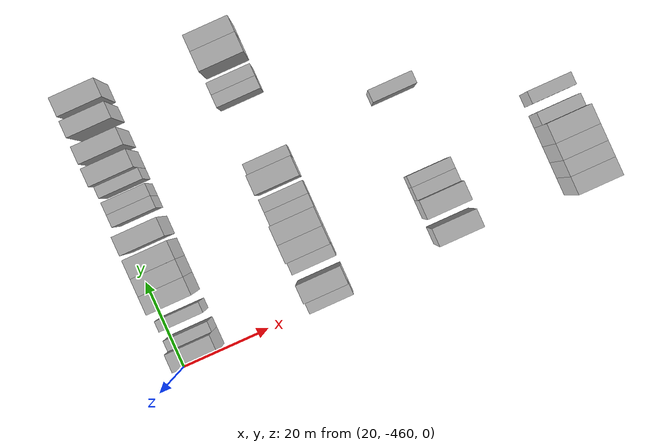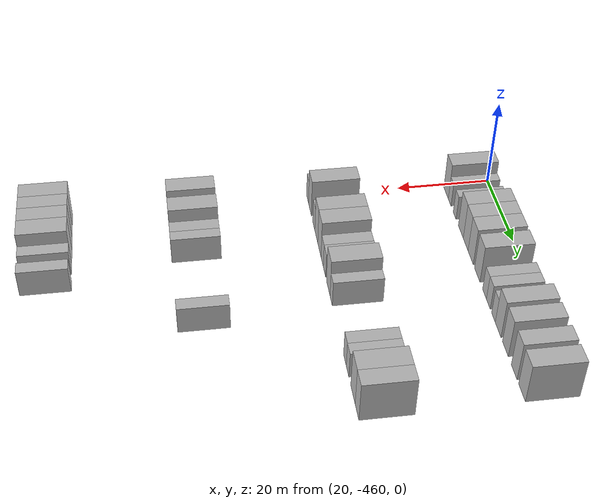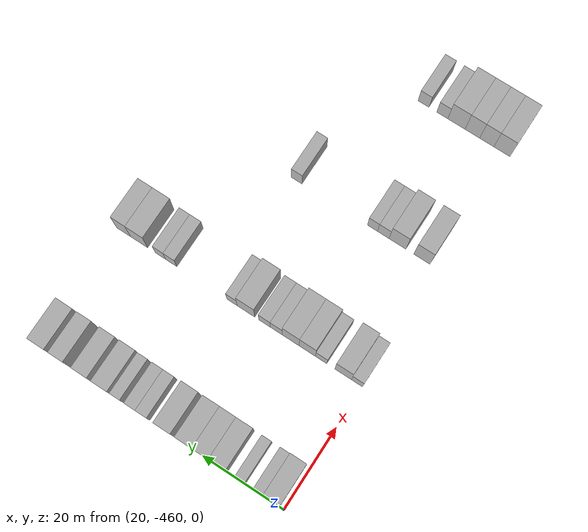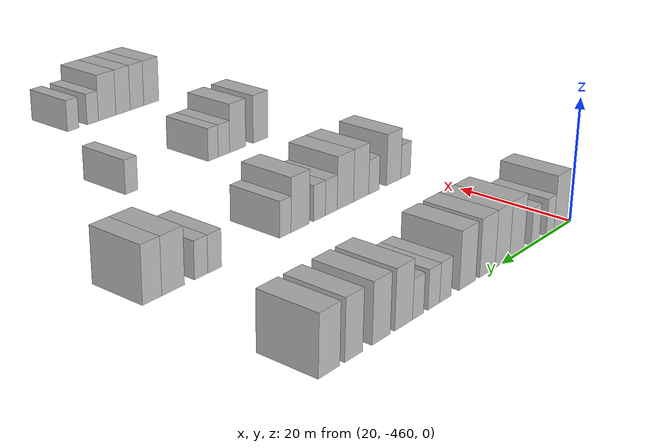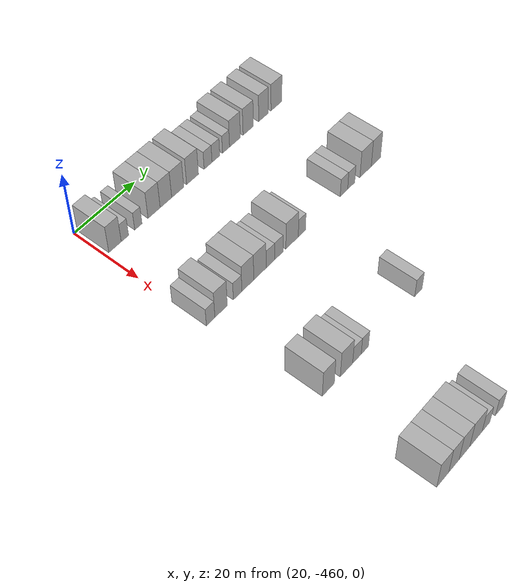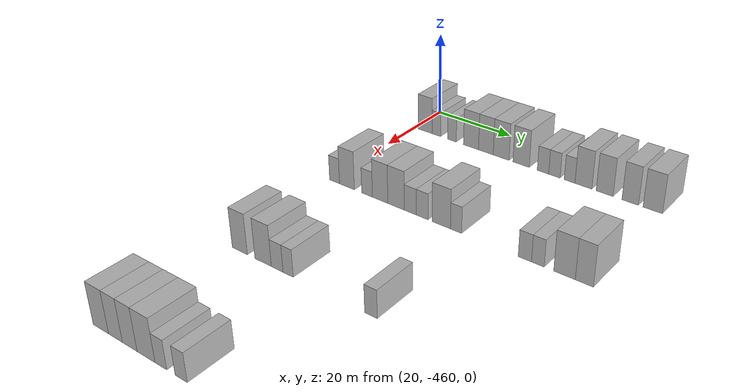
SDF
<sdf version="1.6">
 <world name="default">
  <model name="building_1">
   <static>1</static>
   <pose>25.0000 -456.9990 0 0.000000 0.000000 0.000000</pose>
   <link name="link">
    <pose>0 0 4.50 0 0 0</pose>
    <collision name="collision"><geometry><box><size>10.0000 4.0019 9.0000</size></box></geometry></collision>
    <visual name="visual">
     <cast_shadows>0</cast_shadows>
     <geometry><box><size>10.0000 4.0019 9.0000</size></box></geometry>
     <material>
      <script>
       <uri>model://HANNAS_wall/materials/scripts</uri>
       <uri>model://HANNAS_wall/materials/textures</uri>
       <name>vrc/HANNAS_wall</name>
      </script>
     </material>
    </visual>
   </link>
  </model>
  <model name="building_2">
   <static>1</static>
   <pose>25.0000 -453.7954 0 0.000000 0.000000 0.000000</pose>
   <link name="link">
    <pose>0 0 3.00 0 0 0</pose>
    <collision name="collision"><geometry><box><size>10.0000 2.4054 6.0000</size></box></geometry></collision>
    <visual name="visual">
     <cast_shadows>0</cast_shadows>
     <geometry><box><size>10.0000 2.4054 6.0000</size></box></geometry>
     <material>
      <script>
       <uri>model://HANNAS_wall/materials/scripts</uri>
       <uri>model://HANNAS_wall/materials/textures</uri>
       <name>vrc/HANNAS_wall</name>
      </script>
     </material>
    </visual>
   </link>
  </model>
  <model name="building_3">
   <static>1</static>
   <pose>25.0000 -449.3826 0 0.000000 0.000000 0.000000</pose>
   <link name="link">
    <pose>0 0 3.00 0 0 0</pose>
    <collision name="collision"><geometry><box><size>10.0000 2.4202 6.0000</size></box></geometry></collision>
    <visual name="visual">
     <cast_shadows>0</cast_shadows>
     <geometry><box><size>10.0000 2.4202 6.0000</size></box></geometry>
     <material>
      <script>
       <uri>model://HANNAS_wall/materials/scripts</uri>
       <uri>model://HANNAS_wall/materials/textures</uri>
       <name>vrc/HANNAS_wall</name>
      </script>
     </material>
    </visual>
   </link>
  </model>
  <model name="building_4">
   <static>1</static>
   <pose>25.0000 -444.1288 0 0.000000 0.000000 0.000000</pose>
   <link name="link">
    <pose>0 0 4.50 0 0 0</pose>
    <collision name="collision"><geometry><box><size>10.0000 4.0873 9.0000</size></box></geometry></collision>
    <visual name="visual">
     <cast_shadows>0</cast_shadows>
     <geometry><box><size>10.0000 4.0873 9.0000</size></box></geometry>
     <material>
      <script>
       <uri>model://HANNAS_wall/materials/scripts</uri>
       <uri>model://HANNAS_wall/materials/textures</uri>
       <name>vrc/HANNAS_wall</name>
      </script>
     </material>
    </visual>
   </link>
  </model>
  <model name="building_5">
   <static>1</static>
   <pose>25.0000 -440.1148 0 0.000000 0.000000 0.000000</pose>
   <link name="link">
    <pose>0 0 4.50 0 0 0</pose>
    <collision name="collision"><geometry><box><size>10.0000 3.9407 9.0000</size></box></geometry></collision>
    <visual name="visual">
     <cast_shadows>0</cast_shadows>
     <geometry><box><size>10.0000 3.9407 9.0000</size></box></geometry>
     <material>
      <script>
       <uri>model://HANNAS_wall/materials/scripts</uri>
       <uri>model://HANNAS_wall/materials/textures</uri>
       <name>vrc/HANNAS_wall</name>
      </script>
     </material>
    </visual>
   </link>
  </model>
  <model name="building_6">
   <static>1</static>
   <pose>25.0000 -436.0656 0 0.000000 0.000000 0.000000</pose>
   <link name="link">
    <pose>0 0 4.50 0 0 0</pose>
    <collision name="collision"><geometry><box><size>10.0000 4.1576 9.0000</size></box></geometry></collision>
    <visual name="visual">
     <cast_shadows>0</cast_shadows>
     <geometry><box><size>10.0000 4.1576 9.0000</size></box></geometry>
     <material>
      <script>
       <uri>model://HANNAS_wall/materials/scripts</uri>
       <uri>model://HANNAS_wall/materials/textures</uri>
       <name>vrc/HANNAS_wall</name>
      </script>
     </material>
    </visual>
   </link>
  </model>
  <model name="building_7">
   <static>1</static>
   <pose>25.0000 -430.8940 0 0.000000 0.000000 0.000000</pose>
   <link name="link">
    <pose>0 0 4.50 0 0 0</pose>
    <collision name="collision"><geometry><box><size>10.0000 4.1856 9.0000</size></box></geometry></collision>
    <visual name="visual">
     <cast_shadows>0</cast_shadows>
     <geometry><box><size>10.0000 4.1856 9.0000</size></box></geometry>
     <material>
      <script>
       <uri>model://HANNAS_wall/materials/scripts</uri>
       <uri>model://HANNAS_wall/materials/textures</uri>
       <name>vrc/HANNAS_wall</name>
      </script>
     </material>
    </visual>
   </link>
  </model>
  <model name="building_8">
   <static>1</static>
   <pose>25.0000 -425.3885 0 0.000000 0.000000 0.000000</pose>
   <link name="link">
    <pose>0 0 3.00 0 0 0</pose>
    <collision name="collision"><geometry><box><size>10.0000 2.8254 6.0000</size></box></geometry></collision>
    <visual name="visual">
     <cast_shadows>0</cast_shadows>
     <geometry><box><size>10.0000 2.8254 6.0000</size></box></geometry>
     <material>
      <script>
       <uri>model://HANNAS_wall/materials/scripts</uri>
       <uri>model://HANNAS_wall/materials/textures</uri>
       <name>vrc/HANNAS_wall</name>
      </script>
     </material>
    </visual>
   </link>
  </model>
  <model name="building_9">
   <static>1</static>
   <pose>25.0000 -422.5784 0 0.000000 0.000000 0.000000</pose>
   <link name="link">
    <pose>0 0 3.00 0 0 0</pose>
    <collision name="collision"><geometry><box><size>10.0000 2.7948 6.0000</size></box></geometry></collision>
    <visual name="visual">
     <cast_shadows>0</cast_shadows>
     <geometry><box><size>10.0000 2.7948 6.0000</size></box></geometry>
     <material>
      <script>
       <uri>model://HANNAS_wall/materials/scripts</uri>
       <uri>model://HANNAS_wall/materials/textures</uri>
       <name>vrc/HANNAS_wall</name>
      </script>
     </material>
    </visual>
   </link>
  </model>
  <model name="building_10">
   <static>1</static>
   <pose>25.0000 -418.8921 0 0.000000 0.000000 0.000000</pose>
   <link name="link">
    <pose>0 0 3.00 0 0 0</pose>
    <collision name="collision"><geometry><box><size>10.0000 2.5778 6.0000</size></box></geometry></collision>
    <visual name="visual">
     <cast_shadows>0</cast_shadows>
     <geometry><box><size>10.0000 2.5778 6.0000</size></box></geometry>
     <material>
      <script>
       <uri>model://HANNAS_wall/materials/scripts</uri>
       <uri>model://HANNAS_wall/materials/textures</uri>
       <name>vrc/HANNAS_wall</name>
      </script>
     </material>
    </visual>
   </link>
  </model>
  <model name="building_11">
   <static>1</static>
   <pose>25.0000 -415.6056 0 0.000000 0.000000 0.000000</pose>
   <link name="link">
    <pose>0 0 4.50 0 0 0</pose>
    <collision name="collision"><geometry><box><size>10.0000 3.9953 9.0000</size></box></geometry></collision>
    <visual name="visual">
     <cast_shadows>0</cast_shadows>
     <geometry><box><size>10.0000 3.9953 9.0000</size></box></geometry>
     <material>
      <script>
       <uri>model://HANNAS_wall/materials/scripts</uri>
       <uri>model://HANNAS_wall/materials/textures</uri>
       <name>vrc/HANNAS_wall</name>
      </script>
     </material>
    </visual>
   </link>
  </model>
  <model name="building_12">
   <static>1</static>
   <pose>25.0000 -410.6604 0 0.000000 0.000000 0.000000</pose>
   <link name="link">
    <pose>0 0 4.50 0 0 0</pose>
    <collision name="collision"><geometry><box><size>10.0000 3.8949 9.0000</size></box></geometry></collision>
    <visual name="visual">
     <cast_shadows>0</cast_shadows>
     <geometry><box><size>10.0000 3.8949 9.0000</size></box></geometry>
     <material>
      <script>
       <uri>model://HANNAS_wall/materials/scripts</uri>
       <uri>model://HANNAS_wall/materials/textures</uri>
       <name>vrc/HANNAS_wall</name>
      </script>
     </material>
    </visual>
   </link>
  </model>
  <model name="building_13">
   <static>1</static>
   <pose>25.0000 -404.8639 0 0.000000 0.000000 0.000000</pose>
   <link name="link">
    <pose>0 0 4.50 0 0 0</pose>
    <collision name="collision"><geometry><box><size>10.0000 3.6982 9.0000</size></box></geometry></collision>
    <visual name="visual">
     <cast_shadows>0</cast_shadows>
     <geometry><box><size>10.0000 3.6982 9.0000</size></box></geometry>
     <material>
      <script>
       <uri>model://HANNAS_wall/materials/scripts</uri>
       <uri>model://HANNAS_wall/materials/textures</uri>
       <name>vrc/HANNAS_wall</name>
      </script>
     </material>
    </visual>
   </link>
  </model>
  <model name="building_14">
   <static>1</static>
   <pose>25.0000 -399.9000 0 0.000000 0.000000 0.000000</pose>
   <link name="link">
    <pose>0 0 4.50 0 0 0</pose>
    <collision name="collision"><geometry><box><size>10.0000 4.2295 9.0000</size></box></geometry></collision>
    <visual name="visual">
     <cast_shadows>0</cast_shadows>
     <geometry><box><size>10.0000 4.2295 9.0000</size></box></geometry>
     <material>
      <script>
       <uri>model://HANNAS_wall/materials/scripts</uri>
       <uri>model://HANNAS_wall/materials/textures</uri>
       <name>vrc/HANNAS_wall</name>
      </script>
     </material>
    </visual>
   </link>
  </model>
  <model name="building_235">
   <static>1</static>
   <pose>55.0000 -458.6134 0 0.000000 0.000000 0.000000</pose>
   <link name="link">
    <pose>0 0 3.00 0 0 0</pose>
    <collision name="collision"><geometry><box><size>10.0000 2.7732 6.0000</size></box></geometry></collision>
    <visual name="visual">
     <cast_shadows>0</cast_shadows>
     <geometry><box><size>10.0000 2.7732 6.0000</size></box></geometry>
     <material>
      <script>
       <uri>model://HANNAS_wall/materials/scripts</uri>
       <uri>model://HANNAS_wall/materials/textures</uri>
       <name>vrc/HANNAS_wall</name>
      </script>
     </material>
    </visual>
   </link>
  </model>
  <model name="building_236">
   <static>1</static>
   <pose>55.0000 -455.1838 0 0.000000 0.000000 0.000000</pose>
   <link name="link">
    <pose>0 0 4.50 0 0 0</pose>
    <collision name="collision"><geometry><box><size>10.0000 4.0860 9.0000</size></box></geometry></collision>
    <visual name="visual">
     <cast_shadows>0</cast_shadows>
     <geometry><box><size>10.0000 4.0860 9.0000</size></box></geometry>
     <material>
      <script>
       <uri>model://HANNAS_wall/materials/scripts</uri>
       <uri>model://HANNAS_wall/materials/textures</uri>
       <name>vrc/HANNAS_wall</name>
      </script>
     </material>
    </visual>
   </link>
  </model>
  <model name="building_237">
   <static>1</static>
   <pose>55.0000 -449.7060 0 0.000000 0.000000 0.000000</pose>
   <link name="link">
    <pose>0 0 3.00 0 0 0</pose>
    <collision name="collision"><geometry><box><size>10.0000 2.8697 6.0000</size></box></geometry></collision>
    <visual name="visual">
     <cast_shadows>0</cast_shadows>
     <geometry><box><size>10.0000 2.8697 6.0000</size></box></geometry>
     <material>
      <script>
       <uri>model://HANNAS_wall/materials/scripts</uri>
       <uri>model://HANNAS_wall/materials/textures</uri>
       <name>vrc/HANNAS_wall</name>
      </script>
     </material>
    </visual>
   </link>
  </model>
  <model name="building_238">
   <static>1</static>
   <pose>55.0000 -446.2470 0 0.000000 0.000000 0.000000</pose>
   <link name="link">
    <pose>0 0 4.50 0 0 0</pose>
    <collision name="collision"><geometry><box><size>10.0000 4.0483 9.0000</size></box></geometry></collision>
    <visual name="visual">
     <cast_shadows>0</cast_shadows>
     <geometry><box><size>10.0000 4.0483 9.0000</size></box></geometry>
     <material>
      <script>
       <uri>model://HANNAS_wall/materials/scripts</uri>
       <uri>model://HANNAS_wall/materials/textures</uri>
       <name>vrc/HANNAS_wall</name>
      </script>
     </material>
    </visual>
   </link>
  </model>
  <model name="building_239">
   <static>1</static>
   <pose>55.0000 -442.0933 0 0.000000 0.000000 0.000000</pose>
   <link name="link">
    <pose>0 0 4.50 0 0 0</pose>
    <collision name="collision"><geometry><box><size>10.0000 4.2589 9.0000</size></box></geometry></collision>
    <visual name="visual">
     <cast_shadows>0</cast_shadows>
     <geometry><box><size>10.0000 4.2589 9.0000</size></box></geometry>
     <material>
      <script>
       <uri>model://HANNAS_wall/materials/scripts</uri>
       <uri>model://HANNAS_wall/materials/textures</uri>
       <name>vrc/HANNAS_wall</name>
      </script>
     </material>
    </visual>
   </link>
  </model>
  <model name="building_240">
   <static>1</static>
   <pose>55.0000 -438.4665 0 0.000000 0.000000 0.000000</pose>
   <link name="link">
    <pose>0 0 3.00 0 0 0</pose>
    <collision name="collision"><geometry><box><size>10.0000 2.9948 6.0000</size></box></geometry></collision>
    <visual name="visual">
     <cast_shadows>0</cast_shadows>
     <geometry><box><size>10.0000 2.9948 6.0000</size></box></geometry>
     <material>
      <script>
       <uri>model://HANNAS_wall/materials/scripts</uri>
       <uri>model://HANNAS_wall/materials/textures</uri>
       <name>vrc/HANNAS_wall</name>
      </script>
     </material>
    </visual>
   </link>
  </model>
  <model name="building_241">
   <static>1</static>
   <pose>55.0000 -435.5028 0 0.000000 0.000000 0.000000</pose>
   <link name="link">
    <pose>0 0 3.00 0 0 0</pose>
    <collision name="collision"><geometry><box><size>10.0000 2.9327 6.0000</size></box></geometry></collision>
    <visual name="visual">
     <cast_shadows>0</cast_shadows>
     <geometry><box><size>10.0000 2.9327 6.0000</size></box></geometry>
     <material>
      <script>
       <uri>model://HANNAS_wall/materials/scripts</uri>
       <uri>model://HANNAS_wall/materials/textures</uri>
       <name>vrc/HANNAS_wall</name>
      </script>
     </material>
    </visual>
   </link>
  </model>
  <model name="building_242">
   <static>1</static>
   <pose>55.0000 -430.8138 0 0.000000 0.000000 0.000000</pose>
   <link name="link">
    <pose>0 0 4.50 0 0 0</pose>
    <collision name="collision"><geometry><box><size>10.0000 4.4453 9.0000</size></box></geometry></collision>
    <visual name="visual">
     <cast_shadows>0</cast_shadows>
     <geometry><box><size>10.0000 4.4453 9.0000</size></box></geometry>
     <material>
      <script>
       <uri>model://HANNAS_wall/materials/scripts</uri>
       <uri>model://HANNAS_wall/materials/textures</uri>
       <name>vrc/HANNAS_wall</name>
      </script>
     </material>
    </visual>
   </link>
  </model>
  <model name="building_243">
   <static>1</static>
   <pose>55.0000 -427.2659 0 0.000000 0.000000 0.000000</pose>
   <link name="link">
    <pose>0 0 3.00 0 0 0</pose>
    <collision name="collision"><geometry><box><size>10.0000 2.6504 6.0000</size></box></geometry></collision>
    <visual name="visual">
     <cast_shadows>0</cast_shadows>
     <geometry><box><size>10.0000 2.6504 6.0000</size></box></geometry>
     <material>
      <script>
       <uri>model://HANNAS_wall/materials/scripts</uri>
       <uri>model://HANNAS_wall/materials/textures</uri>
       <name>vrc/HANNAS_wall</name>
      </script>
     </material>
    </visual>
   </link>
  </model>
  <model name="building_244">
   <static>1</static>
   <pose>55.0000 -411.6519 0 0.000000 0.000000 0.000000</pose>
   <link name="link">
    <pose>0 0 3.00 0 0 0</pose>
    <collision name="collision"><geometry><box><size>10.0000 2.8592 6.0000</size></box></geometry></collision>
    <visual name="visual">
     <cast_shadows>0</cast_shadows>
     <geometry><box><size>10.0000 2.8592 6.0000</size></box></geometry>
     <material>
      <script>
       <uri>model://HANNAS_wall/materials/scripts</uri>
       <uri>model://HANNAS_wall/materials/textures</uri>
       <name>vrc/HANNAS_wall</name>
      </script>
     </material>
    </visual>
   </link>
  </model>
  <model name="building_245">
   <static>1</static>
   <pose>55.0000 -408.8595 0 0.000000 0.000000 0.000000</pose>
   <link name="link">
    <pose>0 0 3.00 0 0 0</pose>
    <collision name="collision"><geometry><box><size>10.0000 2.7256 6.0000</size></box></geometry></collision>
    <visual name="visual">
     <cast_shadows>0</cast_shadows>
     <geometry><box><size>10.0000 2.7256 6.0000</size></box></geometry>
     <material>
      <script>
       <uri>model://HANNAS_wall/materials/scripts</uri>
       <uri>model://HANNAS_wall/materials/textures</uri>
       <name>vrc/HANNAS_wall</name>
      </script>
     </material>
    </visual>
   </link>
  </model>
  <model name="building_246">
   <static>1</static>
   <pose>55.0000 -403.2719 0 0.000000 0.000000 0.000000</pose>
   <link name="link">
    <pose>0 0 4.50 0 0 0</pose>
    <collision name="collision"><geometry><box><size>10.0000 4.4496 9.0000</size></box></geometry></collision>
    <visual name="visual">
     <cast_shadows>0</cast_shadows>
     <geometry><box><size>10.0000 4.4496 9.0000</size></box></geometry>
     <material>
      <script>
       <uri>model://HANNAS_wall/materials/scripts</uri>
       <uri>model://HANNAS_wall/materials/textures</uri>
       <name>vrc/HANNAS_wall</name>
      </script>
     </material>
    </visual>
   </link>
  </model>
  <model name="building_247">
   <static>1</static>
   <pose>55.0000 -399.2152 0 0.000000 0.000000 0.000000</pose>
   <link name="link">
    <pose>0 0 4.50 0 0 0</pose>
    <collision name="collision"><geometry><box><size>10.0000 3.6638 9.0000</size></box></geometry></collision>
    <visual name="visual">
     <cast_shadows>0</cast_shadows>
     <geometry><box><size>10.0000 3.6638 9.0000</size></box></geometry>
     <material>
      <script>
       <uri>model://HANNAS_wall/materials/scripts</uri>
       <uri>model://HANNAS_wall/materials/textures</uri>
       <name>vrc/HANNAS_wall</name>
      </script>
     </material>
    </visual>
   </link>
  </model>
  <model name="building_454">
   <static>1</static>
   <pose>85.0000 -455.9805 0 0.000000 0.000000 0.000000</pose>
   <link name="link">
    <pose>0 0 4.50 0 0 0</pose>
    <collision name="collision"><geometry><box><size>10.0000 4.0389 9.0000</size></box></geometry></collision>
    <visual name="visual">
     <cast_shadows>0</cast_shadows>
     <geometry><box><size>10.0000 4.0389 9.0000</size></box></geometry>
     <material>
      <script>
       <uri>model://HANNAS_wall/materials/scripts</uri>
       <uri>model://HANNAS_wall/materials/textures</uri>
       <name>vrc/HANNAS_wall</name>
      </script>
     </material>
    </visual>
   </link>
  </model>
  <model name="building_455">
   <static>1</static>
   <pose>85.0000 -449.8436 0 0.000000 0.000000 0.000000</pose>
   <link name="link">
    <pose>0 0 4.50 0 0 0</pose>
    <collision name="collision"><geometry><box><size>10.0000 4.2349 9.0000</size></box></geometry></collision>
    <visual name="visual">
     <cast_shadows>0</cast_shadows>
     <geometry><box><size>10.0000 4.2349 9.0000</size></box></geometry>
     <material>
      <script>
       <uri>model://HANNAS_wall/materials/scripts</uri>
       <uri>model://HANNAS_wall/materials/textures</uri>
       <name>vrc/HANNAS_wall</name>
      </script>
     </material>
    </visual>
   </link>
  </model>
  <model name="building_456">
   <static>1</static>
   <pose>85.0000 -446.2481 0 0.000000 0.000000 0.000000</pose>
   <link name="link">
    <pose>0 0 3.00 0 0 0</pose>
    <collision name="collision"><geometry><box><size>10.0000 2.9561 6.0000</size></box></geometry></collision>
    <visual name="visual">
     <cast_shadows>0</cast_shadows>
     <geometry><box><size>10.0000 2.9561 6.0000</size></box></geometry>
     <material>
      <script>
       <uri>model://HANNAS_wall/materials/scripts</uri>
       <uri>model://HANNAS_wall/materials/textures</uri>
       <name>vrc/HANNAS_wall</name>
      </script>
     </material>
    </visual>
   </link>
  </model>
  <model name="building_457">
   <static>1</static>
   <pose>85.0000 -443.4904 0 0.000000 0.000000 0.000000</pose>
   <link name="link">
    <pose>0 0 3.00 0 0 0</pose>
    <collision name="collision"><geometry><box><size>10.0000 2.5592 6.0000</size></box></geometry></collision>
    <visual name="visual">
     <cast_shadows>0</cast_shadows>
     <geometry><box><size>10.0000 2.5592 6.0000</size></box></geometry>
     <material>
      <script>
       <uri>model://HANNAS_wall/materials/scripts</uri>
       <uri>model://HANNAS_wall/materials/textures</uri>
       <name>vrc/HANNAS_wall</name>
      </script>
     </material>
    </visual>
   </link>
  </model>
  <model name="building_458">
   <static>1</static>
   <pose>85.0000 -424.0221 0 0.000000 0.000000 0.000000</pose>
   <link name="link">
    <pose>0 0 3.00 0 0 0</pose>
    <collision name="collision"><geometry><box><size>10.0000 2.7925 6.0000</size></box></geometry></collision>
    <visual name="visual">
     <cast_shadows>0</cast_shadows>
     <geometry><box><size>10.0000 2.7925 6.0000</size></box></geometry>
     <material>
      <script>
       <uri>model://HANNAS_wall/materials/scripts</uri>
       <uri>model://HANNAS_wall/materials/textures</uri>
       <name>vrc/HANNAS_wall</name>
      </script>
     </material>
    </visual>
   </link>
  </model>
  <model name="building_673">
   <static>1</static>
   <pose>115.0000 -457.9562 0 0.000000 0.000000 0.000000</pose>
   <link name="link">
    <pose>0 0 4.50 0 0 0</pose>
    <collision name="collision"><geometry><box><size>10.0000 4.0876 9.0000</size></box></geometry></collision>
    <visual name="visual">
     <cast_shadows>0</cast_shadows>
     <geometry><box><size>10.0000 4.0876 9.0000</size></box></geometry>
     <material>
      <script>
       <uri>model://HANNAS_wall/materials/scripts</uri>
       <uri>model://HANNAS_wall/materials/textures</uri>
       <name>vrc/HANNAS_wall</name>
      </script>
     </material>
    </visual>
   </link>
  </model>
  <model name="building_674">
   <static>1</static>
   <pose>115.0000 -454.0995 0 0.000000 0.000000 0.000000</pose>
   <link name="link">
    <pose>0 0 4.50 0 0 0</pose>
    <collision name="collision"><geometry><box><size>10.0000 3.6259 9.0000</size></box></geometry></collision>
    <visual name="visual">
     <cast_shadows>0</cast_shadows>
     <geometry><box><size>10.0000 3.6259 9.0000</size></box></geometry>
     <material>
      <script>
       <uri>model://HANNAS_wall/materials/scripts</uri>
       <uri>model://HANNAS_wall/materials/textures</uri>
       <name>vrc/HANNAS_wall</name>
      </script>
     </material>
    </visual>
   </link>
  </model>
  <model name="building_675">
   <static>1</static>
   <pose>115.0000 -450.4157 0 0.000000 0.000000 0.000000</pose>
   <link name="link">
    <pose>0 0 4.50 0 0 0</pose>
    <collision name="collision"><geometry><box><size>10.0000 3.7417 9.0000</size></box></geometry></collision>
    <visual name="visual">
     <cast_shadows>0</cast_shadows>
     <geometry><box><size>10.0000 3.7417 9.0000</size></box></geometry>
     <material>
      <script>
       <uri>model://HANNAS_wall/materials/scripts</uri>
       <uri>model://HANNAS_wall/materials/textures</uri>
       <name>vrc/HANNAS_wall</name>
      </script>
     </material>
    </visual>
   </link>
  </model>
  <model name="building_676">
   <static>1</static>
   <pose>115.0000 -446.3225 0 0.000000 0.000000 0.000000</pose>
   <link name="link">
    <pose>0 0 4.50 0 0 0</pose>
    <collision name="collision"><geometry><box><size>10.0000 4.4447 9.0000</size></box></geometry></collision>
    <visual name="visual">
     <cast_shadows>0</cast_shadows>
     <geometry><box><size>10.0000 4.4447 9.0000</size></box></geometry>
     <material>
      <script>
       <uri>model://HANNAS_wall/materials/scripts</uri>
       <uri>model://HANNAS_wall/materials/textures</uri>
       <name>vrc/HANNAS_wall</name>
      </script>
     </material>
    </visual>
   </link>
  </model>
  <model name="building_677">
   <static>1</static>
   <pose>115.0000 -442.6782 0 0.000000 0.000000 0.000000</pose>
   <link name="link">
    <pose>0 0 3.00 0 0 0</pose>
    <collision name="collision"><geometry><box><size>10.0000 2.8438 6.0000</size></box></geometry></collision>
    <visual name="visual">
     <cast_shadows>0</cast_shadows>
     <geometry><box><size>10.0000 2.8438 6.0000</size></box></geometry>
     <material>
      <script>
       <uri>model://HANNAS_wall/materials/scripts</uri>
       <uri>model://HANNAS_wall/materials/textures</uri>
       <name>vrc/HANNAS_wall</name>
      </script>
     </material>
    </visual>
   </link>
  </model>
  <model name="building_678">
   <static>1</static>
   <pose>115.0000 -437.8387 0 0.000000 0.000000 0.000000</pose>
   <link name="link">
    <pose>0 0 3.00 0 0 0</pose>
    <collision name="collision"><geometry><box><size>10.0000 2.8352 6.0000</size></box></geometry></collision>
    <visual name="visual">
     <cast_shadows>0</cast_shadows>
     <geometry><box><size>10.0000 2.8352 6.0000</size></box></geometry>
     <material>
      <script>
       <uri>model://HANNAS_wall/materials/scripts</uri>
       <uri>model://HANNAS_wall/materials/textures</uri>
       <name>vrc/HANNAS_wall</name>
      </script>
     </material>
    </visual>
   </link>
  </model>
 </world>
</sdf>
